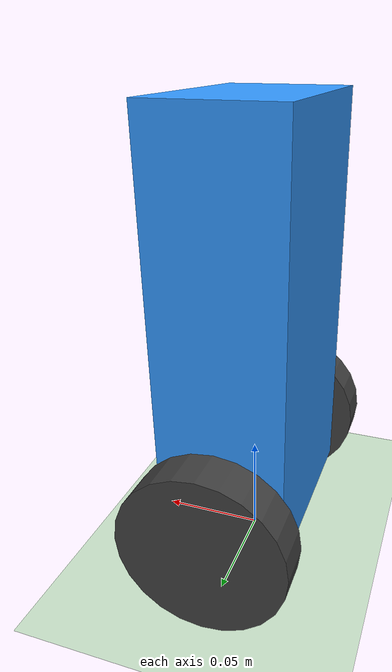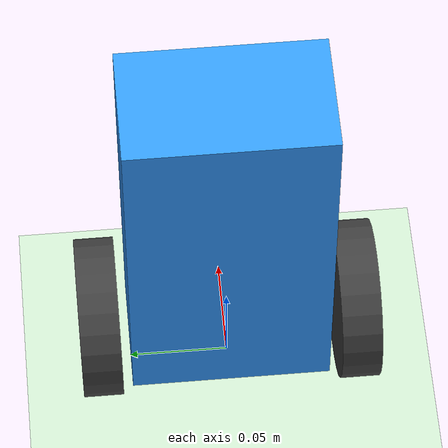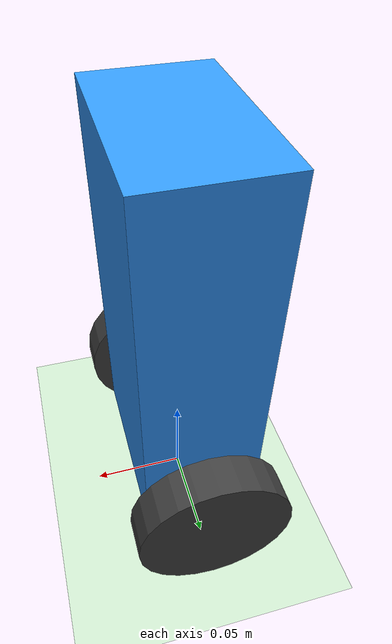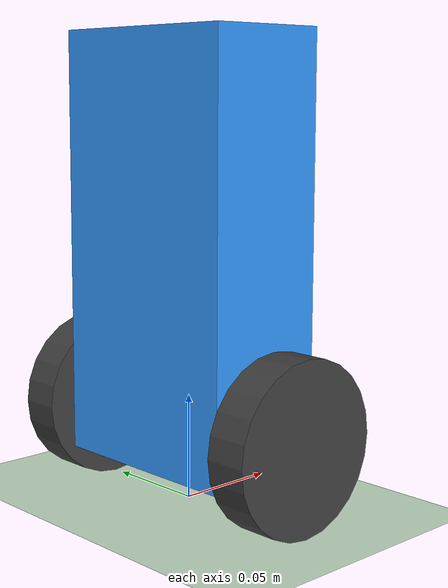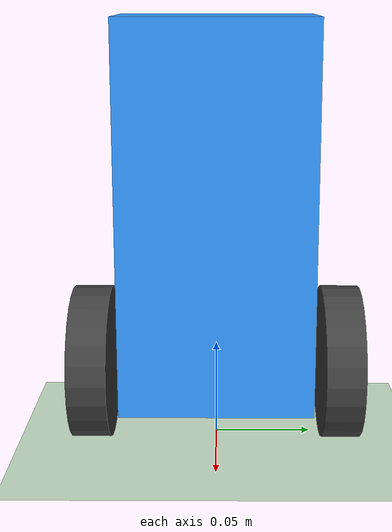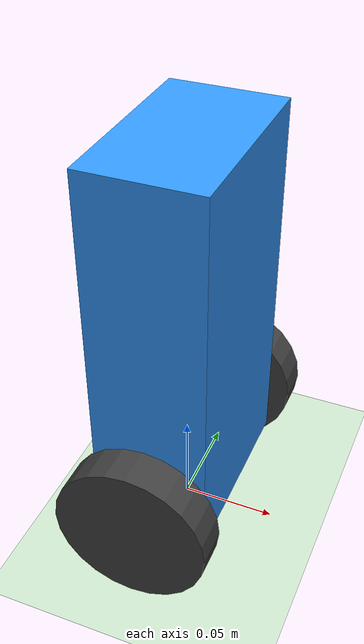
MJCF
<?xml version="1.0" encoding="utf-8"?>
<mujoco model="two_wheel_balancer">

    <compiler angle="degree"/>
    <option timestep="0.001" integrator="RK4" density="1.2" gravity="0 0 -9.81"/>

    <default>
        <!-- Overdamped, soft contact with small margin to avoid chatter -->
        <geom solimp="0.9 0.95 0.001 0.5 2" solref="0.02 2" margin="0.001"/>
    </default>

    <worldbody>
        <light name="top" pos="0 0 3" dir="0 0 -1" directional="true"/>
        <geom name="floor" type="plane" size="10 10 0.1" rgba="0.8 0.9 0.8 1" friction="1.0 0.005 0.0001"/>

        <body name="base" pos="0 0 0.12">
            <!-- Lock vertical translation: ball orientation + x,y slides -->
            <joint name="base_orient" type="ball"/>
            <joint name="base_x" type="slide" axis="1 0 0"/>
            <joint name="base_y" type="slide" axis="0 1 0"/>

            <!-- Body dimensions: half-size = 0.03, 0.05, 0.10 -->
            <geom name="torso" type="box" size="0.03 0.05 0.10"
                rgba="0.2 0.6 1 1" mass="0.8"/>

            <!-- Raise center of mass -->
            <inertial pos="0 0 0.06" mass="0.8" diaginertia="0.003 0.003 0.001"/>

            <!-- IMU -->
            <site name="imu" pos="0 0 0" size="0.005"/>

            <body name="left_wheel" pos="0 0.065 -0.08">
                <inertial pos="0 0 0" euler="90 0 0" mass="0.25" diaginertia="0.00020 0.00012 0.00012"/>
                <joint name="left_hinge" type="hinge" pos="0 0 0" axis="0 1 0" actuatorfrcrange="-5 5" damping="0.3"/>
                <geom name="left_wheel_geom" type="cylinder" size="0.04 0.01" euler="90 0 0" rgba="0.25 0.25 0.25 1" contype="0"/>
                <site name="left_center" pos="0 0 0" size="0.002"/>
            </body>

            <body name="right_wheel" pos="0 -0.065 -0.08">
                <inertial pos="0 0 0" euler="90 0 0" mass="0.25" diaginertia="0.00020 0.00012 0.00012"/>
                <joint name="right_hinge" type="hinge" pos="0 0 0" axis="0 1 0" actuatorfrcrange="-5 5" damping="0.3"/>
                <geom name="right_wheel_geom" type="cylinder" size="0.04 0.01" euler="90 0 0" rgba="0.25 0.25 0.25 1" contype="0"/>
                <site name="right_center" pos="0 0 0" size="0.002"/>
            </body>
        </body>

        <!-- Anchors that constrain wheel centers to z=radius with XY slides -->
        <body name="left_anchor" pos="0 0 0">
            <joint name="left_anchor_x" type="slide" axis="1 0 0"/>
            <joint name="left_anchor_y" type="slide" axis="0 1 0"/>
            <inertial pos="0 0 0" mass="0.01" diaginertia="1e-5 1e-5 1e-5"/>
            <site name="left_anchor_site" pos="0 0 0.04" size="0.002"/>
        </body>

        <body name="right_anchor" pos="0 0 0">
            <joint name="right_anchor_x" type="slide" axis="1 0 0"/>
            <joint name="right_anchor_y" type="slide" axis="0 1 0"/>
            <inertial pos="0 0 0" mass="0.01" diaginertia="1e-5 1e-5 1e-5"/>
            <site name="right_anchor_site" pos="0 0 0.04" size="0.002"/>
        </body>
    </worldbody>

    <actuator>
        <!-- Use velocity actuators for stability -->
        <velocity name="left_motor" joint="left_hinge" kv="0.8" gear="1" forcerange="-2 2"/>
        <velocity name="right_motor" joint="right_hinge" kv="0.8" gear="1" forcerange="-2 2"/>
    </actuator>

    <sensor>
        <gyro name="gyro" site="imu"/>
        <accelerometer name="acc" site="imu"/>
    </sensor>

    <equality>
        <connect name="left_center_on_plane" site1="left_center" site2="left_anchor_site"/>
        <connect name="right_center_on_plane" site1="right_center" site2="right_anchor_site"/>
    </equality>

</mujoco>
